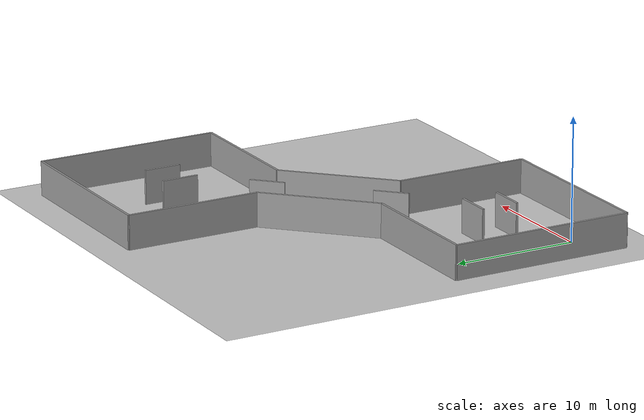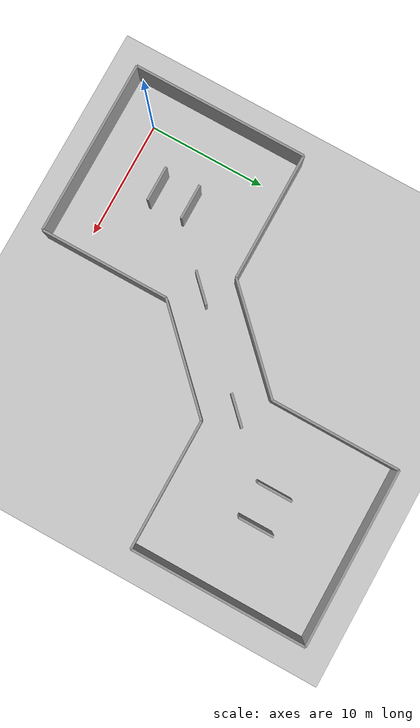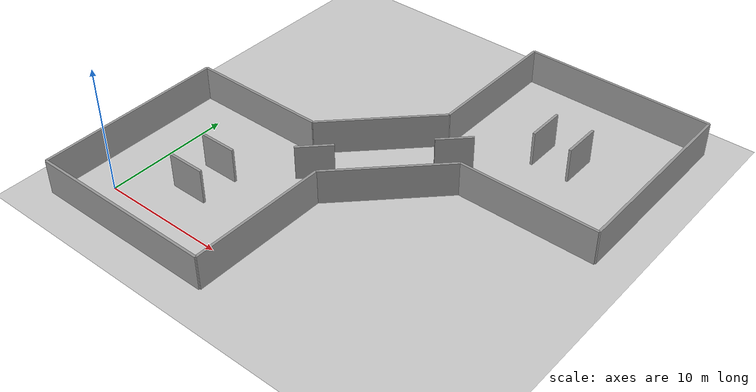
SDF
<?xml version="1.0" ?>

    <!-- this file is auto generated using pedsim_gazebo_plugin pkg -->
    <sdf version="1.5">
      <world name="default">

      <!-- Ground Plane -->

      <include>
        <uri>model://ground_plane</uri>
      </include>

      <include>
        <uri>model://sun</uri>
      </include>

     <model name='grey_wall_1'>
      <static>1</static>
      <link name='link'>

	  <pose frame=''>-3.0 4.5  1.4 0 0 1.57</pose>

        <collision name='collision'>
          <geometry>
            <box>

	     <size> 15.0 .2  2.8 </size>

      	   </box>
          </geometry>
          <max_contacts>10</max_contacts>
          <surface>
            <contact>
              <ode/>
            </contact>
            <bounce/>
            <friction>
              <torsional>
                <ode/>
              </torsional>
              <ode/>
            </friction>
          </surface>
        </collision>
        <visual name='visual'>
          <cast_shadows>0</cast_shadows>
          <geometry>
            <box>

	     <size> 15.0 .2  2.8 </size>

      	   </box>
       </geometry>
          <material>
            <script>
              <uri>model://grey_wall/materials/scripts</uri>
              <uri>model://grey_wall/materials/textures</uri>
              <name>vrc/grey_wall</name>
            </script>
          </material>
        </visual>
        <self_collide>0</self_collide>
        <enable_wind>0</enable_wind>
        <kinematic>0</kinematic>
      </link>
    </model>

     <model name='grey_wall_2'>
      <static>1</static>
      <link name='link'>

	  <pose frame=''>4.5 -3.0  1.4 0 0 0.0</pose>

        <collision name='collision'>
          <geometry>
            <box>

	     <size> 15.0 .2  2.8 </size>

      	   </box>
          </geometry>
          <max_contacts>10</max_contacts>
          <surface>
            <contact>
              <ode/>
            </contact>
            <bounce/>
            <friction>
              <torsional>
                <ode/>
              </torsional>
              <ode/>
            </friction>
          </surface>
        </collision>
        <visual name='visual'>
          <cast_shadows>0</cast_shadows>
          <geometry>
            <box>

	     <size> 15.0 .2  2.8 </size>

      	   </box>
       </geometry>
          <material>
            <script>
              <uri>model://grey_wall/materials/scripts</uri>
              <uri>model://grey_wall/materials/textures</uri>
              <name>vrc/grey_wall</name>
            </script>
          </material>
        </visual>
        <self_collide>0</self_collide>
        <enable_wind>0</enable_wind>
        <kinematic>0</kinematic>
      </link>
    </model>

     <model name='grey_wall_3'>
      <static>1</static>
      <link name='link'>

	  <pose frame=''>2.5 12.0  1.4 0 0 0.0</pose>

        <collision name='collision'>
          <geometry>
            <box>

	     <size> 11.0 .2  2.8 </size>

      	   </box>
          </geometry>
          <max_contacts>10</max_contacts>
          <surface>
            <contact>
              <ode/>
            </contact>
            <bounce/>
            <friction>
              <torsional>
                <ode/>
              </torsional>
              <ode/>
            </friction>
          </surface>
        </collision>
        <visual name='visual'>
          <cast_shadows>0</cast_shadows>
          <geometry>
            <box>

	     <size> 11.0 .2  2.8 </size>

      	   </box>
       </geometry>
          <material>
            <script>
              <uri>model://grey_wall/materials/scripts</uri>
              <uri>model://grey_wall/materials/textures</uri>
              <name>vrc/grey_wall</name>
            </script>
          </material>
        </visual>
        <self_collide>0</self_collide>
        <enable_wind>0</enable_wind>
        <kinematic>0</kinematic>
      </link>
    </model>

     <model name='grey_wall_4'>
      <static>1</static>
      <link name='link'>

	  <pose frame=''>12.0 2.5  1.4 0 0 1.57</pose>

        <collision name='collision'>
          <geometry>
            <box>

	     <size> 11.0 .2  2.8 </size>

      	   </box>
          </geometry>
          <max_contacts>10</max_contacts>
          <surface>
            <contact>
              <ode/>
            </contact>
            <bounce/>
            <friction>
              <torsional>
                <ode/>
              </torsional>
              <ode/>
            </friction>
          </surface>
        </collision>
        <visual name='visual'>
          <cast_shadows>0</cast_shadows>
          <geometry>
            <box>

	     <size> 11.0 .2  2.8 </size>

      	   </box>
       </geometry>
          <material>
            <script>
              <uri>model://grey_wall/materials/scripts</uri>
              <uri>model://grey_wall/materials/textures</uri>
              <name>vrc/grey_wall</name>
            </script>
          </material>
        </visual>
        <self_collide>0</self_collide>
        <enable_wind>0</enable_wind>
        <kinematic>0</kinematic>
      </link>
    </model>

     <model name='grey_wall_5'>
      <static>1</static>
      <link name='link'>

	  <pose frame=''>11.5 15.5  1.4 0 0 0.7853981633974483</pose>

        <collision name='collision'>
          <geometry>
            <box>

	     <size> 9.899494936611665 .2  2.8 </size>

      	   </box>
          </geometry>
          <max_contacts>10</max_contacts>
          <surface>
            <contact>
              <ode/>
            </contact>
            <bounce/>
            <friction>
              <torsional>
                <ode/>
              </torsional>
              <ode/>
            </friction>
          </surface>
        </collision>
        <visual name='visual'>
          <cast_shadows>0</cast_shadows>
          <geometry>
            <box>

	     <size> 9.899494936611665 .2  2.8 </size>

      	   </box>
       </geometry>
          <material>
            <script>
              <uri>model://grey_wall/materials/scripts</uri>
              <uri>model://grey_wall/materials/textures</uri>
              <name>vrc/grey_wall</name>
            </script>
          </material>
        </visual>
        <self_collide>0</self_collide>
        <enable_wind>0</enable_wind>
        <kinematic>0</kinematic>
      </link>
    </model>

     <model name='grey_wall_6'>
      <static>1</static>
      <link name='link'>

	  <pose frame=''>15.5 11.5  1.4 0 0 0.7853981633974483</pose>

        <collision name='collision'>
          <geometry>
            <box>

	     <size> 9.899494936611665 .2  2.8 </size>

      	   </box>
          </geometry>
          <max_contacts>10</max_contacts>
          <surface>
            <contact>
              <ode/>
            </contact>
            <bounce/>
            <friction>
              <torsional>
                <ode/>
              </torsional>
              <ode/>
            </friction>
          </surface>
        </collision>
        <visual name='visual'>
          <cast_shadows>0</cast_shadows>
          <geometry>
            <box>

	     <size> 9.899494936611665 .2  2.8 </size>

      	   </box>
       </geometry>
          <material>
            <script>
              <uri>model://grey_wall/materials/scripts</uri>
              <uri>model://grey_wall/materials/textures</uri>
              <name>vrc/grey_wall</name>
            </script>
          </material>
        </visual>
        <self_collide>0</self_collide>
        <enable_wind>0</enable_wind>
        <kinematic>0</kinematic>
      </link>
    </model>

     <model name='grey_wall_7'>
      <static>1</static>
      <link name='link'>

	  <pose frame=''>24.5 15.0  1.4 0 0 0.0</pose>

        <collision name='collision'>
          <geometry>
            <box>

	     <size> 11.0 .2  2.8 </size>

      	   </box>
          </geometry>
          <max_contacts>10</max_contacts>
          <surface>
            <contact>
              <ode/>
            </contact>
            <bounce/>
            <friction>
              <torsional>
                <ode/>
              </torsional>
              <ode/>
            </friction>
          </surface>
        </collision>
        <visual name='visual'>
          <cast_shadows>0</cast_shadows>
          <geometry>
            <box>

	     <size> 11.0 .2  2.8 </size>

      	   </box>
       </geometry>
          <material>
            <script>
              <uri>model://grey_wall/materials/scripts</uri>
              <uri>model://grey_wall/materials/textures</uri>
              <name>vrc/grey_wall</name>
            </script>
          </material>
        </visual>
        <self_collide>0</self_collide>
        <enable_wind>0</enable_wind>
        <kinematic>0</kinematic>
      </link>
    </model>

     <model name='grey_wall_8'>
      <static>1</static>
      <link name='link'>

	  <pose frame=''>15.0 24.5  1.4 0 0 1.57</pose>

        <collision name='collision'>
          <geometry>
            <box>

	     <size> 11.0 .2  2.8 </size>

      	   </box>
          </geometry>
          <max_contacts>10</max_contacts>
          <surface>
            <contact>
              <ode/>
            </contact>
            <bounce/>
            <friction>
              <torsional>
                <ode/>
              </torsional>
              <ode/>
            </friction>
          </surface>
        </collision>
        <visual name='visual'>
          <cast_shadows>0</cast_shadows>
          <geometry>
            <box>

	     <size> 11.0 .2  2.8 </size>

      	   </box>
       </geometry>
          <material>
            <script>
              <uri>model://grey_wall/materials/scripts</uri>
              <uri>model://grey_wall/materials/textures</uri>
              <name>vrc/grey_wall</name>
            </script>
          </material>
        </visual>
        <self_collide>0</self_collide>
        <enable_wind>0</enable_wind>
        <kinematic>0</kinematic>
      </link>
    </model>

     <model name='grey_wall_9'>
      <static>1</static>
      <link name='link'>

	  <pose frame=''>30.0 22.5  1.4 0 0 1.57</pose>

        <collision name='collision'>
          <geometry>
            <box>

	     <size> 15.0 .2  2.8 </size>

      	   </box>
          </geometry>
          <max_contacts>10</max_contacts>
          <surface>
            <contact>
              <ode/>
            </contact>
            <bounce/>
            <friction>
              <torsional>
                <ode/>
              </torsional>
              <ode/>
            </friction>
          </surface>
        </collision>
        <visual name='visual'>
          <cast_shadows>0</cast_shadows>
          <geometry>
            <box>

	     <size> 15.0 .2  2.8 </size>

      	   </box>
       </geometry>
          <material>
            <script>
              <uri>model://grey_wall/materials/scripts</uri>
              <uri>model://grey_wall/materials/textures</uri>
              <name>vrc/grey_wall</name>
            </script>
          </material>
        </visual>
        <self_collide>0</self_collide>
        <enable_wind>0</enable_wind>
        <kinematic>0</kinematic>
      </link>
    </model>

     <model name='grey_wall_10'>
      <static>1</static>
      <link name='link'>

	  <pose frame=''>22.5 30.0  1.4 0 0 0.0</pose>

        <collision name='collision'>
          <geometry>
            <box>

	     <size> 15.0 .2  2.8 </size>

      	   </box>
          </geometry>
          <max_contacts>10</max_contacts>
          <surface>
            <contact>
              <ode/>
            </contact>
            <bounce/>
            <friction>
              <torsional>
                <ode/>
              </torsional>
              <ode/>
            </friction>
          </surface>
        </collision>
        <visual name='visual'>
          <cast_shadows>0</cast_shadows>
          <geometry>
            <box>

	     <size> 15.0 .2  2.8 </size>

      	   </box>
       </geometry>
          <material>
            <script>
              <uri>model://grey_wall/materials/scripts</uri>
              <uri>model://grey_wall/materials/textures</uri>
              <name>vrc/grey_wall</name>
            </script>
          </material>
        </visual>
        <self_collide>0</self_collide>
        <enable_wind>0</enable_wind>
        <kinematic>0</kinematic>
      </link>
    </model>

     <model name='grey_wall_11'>
      <static>1</static>
      <link name='link'>

	  <pose frame=''>4.5 6.0  1.4 0 0 0.0</pose>

        <collision name='collision'>
          <geometry>
            <box>

	     <size> 3.0 .2  2.8 </size>

      	   </box>
          </geometry>
          <max_contacts>10</max_contacts>
          <surface>
            <contact>
              <ode/>
            </contact>
            <bounce/>
            <friction>
              <torsional>
                <ode/>
              </torsional>
              <ode/>
            </friction>
          </surface>
        </collision>
        <visual name='visual'>
          <cast_shadows>0</cast_shadows>
          <geometry>
            <box>

	     <size> 3.0 .2  2.8 </size>

      	   </box>
       </geometry>
          <material>
            <script>
              <uri>model://grey_wall/materials/scripts</uri>
              <uri>model://grey_wall/materials/textures</uri>
              <name>vrc/grey_wall</name>
            </script>
          </material>
        </visual>
        <self_collide>0</self_collide>
        <enable_wind>0</enable_wind>
        <kinematic>0</kinematic>
      </link>
    </model>

     <model name='grey_wall_12'>
      <static>1</static>
      <link name='link'>

	  <pose frame=''>4.5 3.0  1.4 0 0 0.0</pose>

        <collision name='collision'>
          <geometry>
            <box>

	     <size> 3.0 .2  2.8 </size>

      	   </box>
          </geometry>
          <max_contacts>10</max_contacts>
          <surface>
            <contact>
              <ode/>
            </contact>
            <bounce/>
            <friction>
              <torsional>
                <ode/>
              </torsional>
              <ode/>
            </friction>
          </surface>
        </collision>
        <visual name='visual'>
          <cast_shadows>0</cast_shadows>
          <geometry>
            <box>

	     <size> 3.0 .2  2.8 </size>

      	   </box>
       </geometry>
          <material>
            <script>
              <uri>model://grey_wall/materials/scripts</uri>
              <uri>model://grey_wall/materials/textures</uri>
              <name>vrc/grey_wall</name>
            </script>
          </material>
        </visual>
        <self_collide>0</self_collide>
        <enable_wind>0</enable_wind>
        <kinematic>0</kinematic>
      </link>
    </model>

     <model name='grey_wall_13'>
      <static>1</static>
      <link name='link'>

	  <pose frame=''>24.0 22.5  1.4 0 0 1.57</pose>

        <collision name='collision'>
          <geometry>
            <box>

	     <size> 3.0 .2  2.8 </size>

      	   </box>
          </geometry>
          <max_contacts>10</max_contacts>
          <surface>
            <contact>
              <ode/>
            </contact>
            <bounce/>
            <friction>
              <torsional>
                <ode/>
              </torsional>
              <ode/>
            </friction>
          </surface>
        </collision>
        <visual name='visual'>
          <cast_shadows>0</cast_shadows>
          <geometry>
            <box>

	     <size> 3.0 .2  2.8 </size>

      	   </box>
       </geometry>
          <material>
            <script>
              <uri>model://grey_wall/materials/scripts</uri>
              <uri>model://grey_wall/materials/textures</uri>
              <name>vrc/grey_wall</name>
            </script>
          </material>
        </visual>
        <self_collide>0</self_collide>
        <enable_wind>0</enable_wind>
        <kinematic>0</kinematic>
      </link>
    </model>

     <model name='grey_wall_14'>
      <static>1</static>
      <link name='link'>

	  <pose frame=''>21.0 22.5  1.4 0 0 1.57</pose>

        <collision name='collision'>
          <geometry>
            <box>

	     <size> 3.0 .2  2.8 </size>

      	   </box>
          </geometry>
          <max_contacts>10</max_contacts>
          <surface>
            <contact>
              <ode/>
            </contact>
            <bounce/>
            <friction>
              <torsional>
                <ode/>
              </torsional>
              <ode/>
            </friction>
          </surface>
        </collision>
        <visual name='visual'>
          <cast_shadows>0</cast_shadows>
          <geometry>
            <box>

	     <size> 3.0 .2  2.8 </size>

      	   </box>
       </geometry>
          <material>
            <script>
              <uri>model://grey_wall/materials/scripts</uri>
              <uri>model://grey_wall/materials/textures</uri>
              <name>vrc/grey_wall</name>
            </script>
          </material>
        </visual>
        <self_collide>0</self_collide>
        <enable_wind>0</enable_wind>
        <kinematic>0</kinematic>
      </link>
    </model>

     <model name='grey_wall_15'>
      <static>1</static>
      <link name='link'>

	  <pose frame=''>10.0 10.0  1.4 0 0 0.7853981633974483</pose>

        <collision name='collision'>
          <geometry>
            <box>

	     <size> 2.8284271247461903 .2  2.8 </size>

      	   </box>
          </geometry>
          <max_contacts>10</max_contacts>
          <surface>
            <contact>
              <ode/>
            </contact>
            <bounce/>
            <friction>
              <torsional>
                <ode/>
              </torsional>
              <ode/>
            </friction>
          </surface>
        </collision>
        <visual name='visual'>
          <cast_shadows>0</cast_shadows>
          <geometry>
            <box>

	     <size> 2.8284271247461903 .2  2.8 </size>

      	   </box>
       </geometry>
          <material>
            <script>
              <uri>model://grey_wall/materials/scripts</uri>
              <uri>model://grey_wall/materials/textures</uri>
              <name>vrc/grey_wall</name>
            </script>
          </material>
        </visual>
        <self_collide>0</self_collide>
        <enable_wind>0</enable_wind>
        <kinematic>0</kinematic>
      </link>
    </model>

     <model name='grey_wall_16'>
      <static>1</static>
      <link name='link'>

	  <pose frame=''>17.0 17.0  1.4 0 0 0.7853981633974483</pose>

        <collision name='collision'>
          <geometry>
            <box>

	     <size> 2.8284271247461903 .2  2.8 </size>

      	   </box>
          </geometry>
          <max_contacts>10</max_contacts>
          <surface>
            <contact>
              <ode/>
            </contact>
            <bounce/>
            <friction>
              <torsional>
                <ode/>
              </torsional>
              <ode/>
            </friction>
          </surface>
        </collision>
        <visual name='visual'>
          <cast_shadows>0</cast_shadows>
          <geometry>
            <box>

	     <size> 2.8284271247461903 .2  2.8 </size>

      	   </box>
       </geometry>
          <material>
            <script>
              <uri>model://grey_wall/materials/scripts</uri>
              <uri>model://grey_wall/materials/textures</uri>
              <name>vrc/grey_wall</name>
            </script>
          </material>
        </visual>
        <self_collide>0</self_collide>
        <enable_wind>0</enable_wind>
        <kinematic>0</kinematic>
      </link>
    </model>

            <plugin name="ActorPosesPlugin" filename="libActorPosesPlugin.so">
        </plugin>

      </world>
    </sdf>
